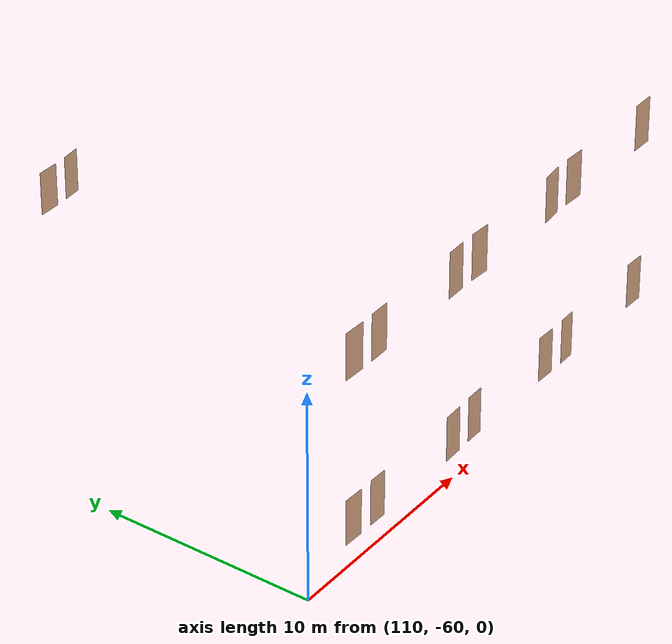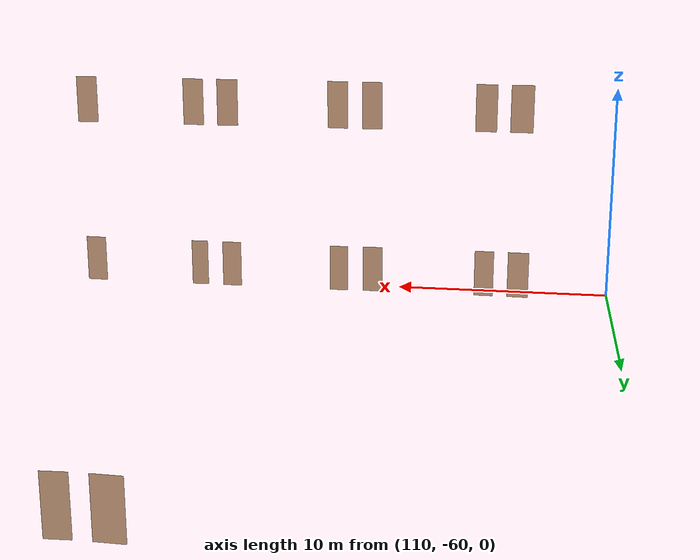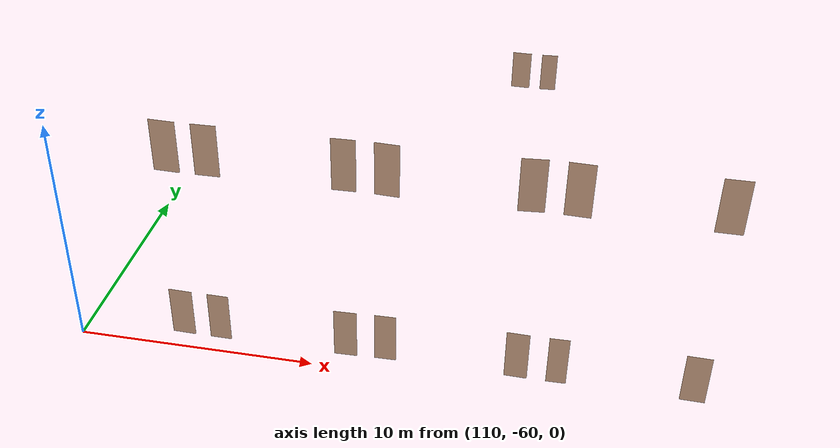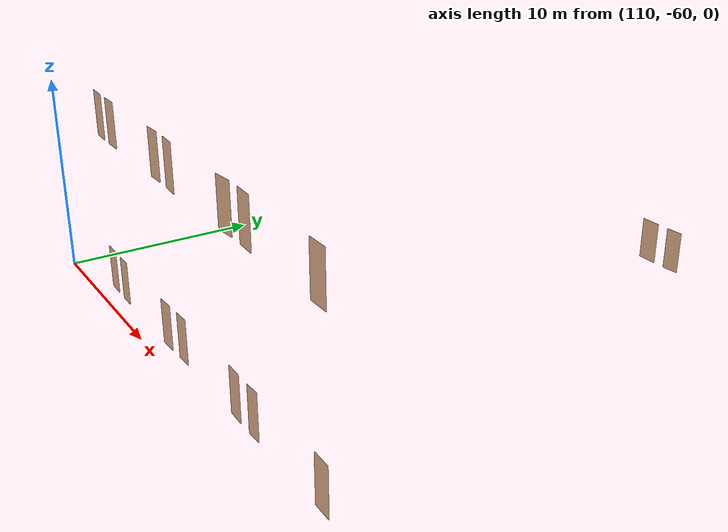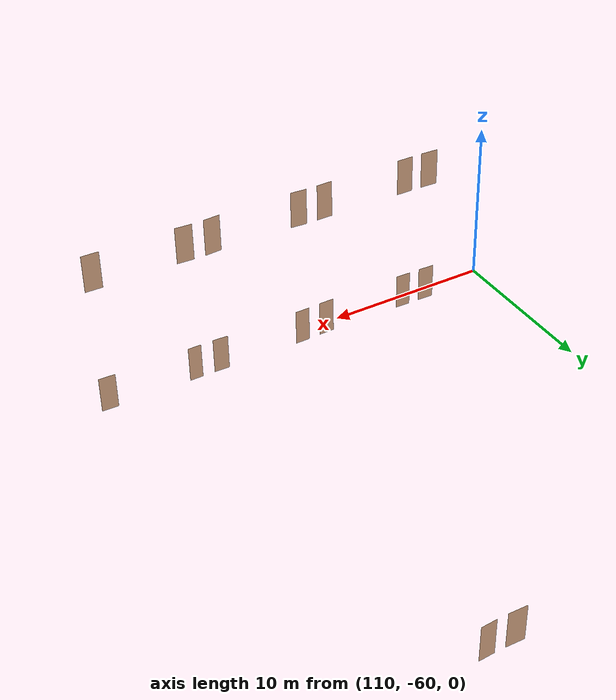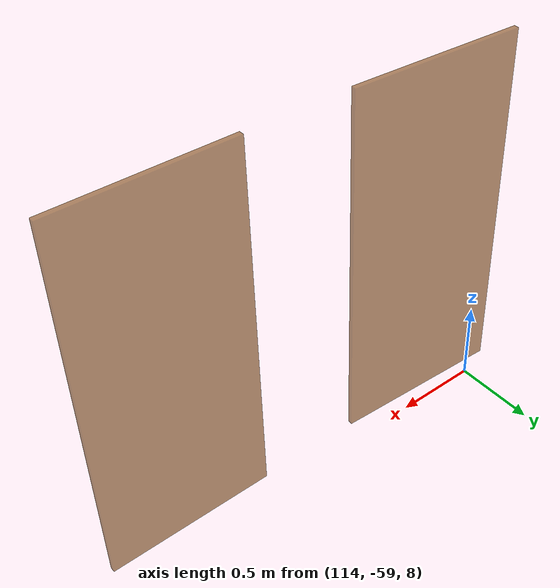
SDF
<sdf version="1.7">
 <world name="sim_world">
  <model name="puerta28">
   <pose>126.01508757610048 -33.778688903941855 0.0 0 0 -0.02857833146900446</pose>
   <link name="right">
    <pose>0 0 1.11 0 0 0</pose>
    <visual name="right_visual">
     <geometry><box><size>1.0545589963781905 0.03 2.2</size></box></geometry>
     <material>
      <ambient>0.5 0.25 0 0.6</ambient>
      <diffuse>0.5 0.25 0 0.6</diffuse>
      <pbr><metal><metalness>0.0</metalness></metal></pbr>
     </material>
    </visual>
    <collision name="right_collision">
     <geometry><box><size>1.0545589963781905 0.03 2.2</size></box></geometry>
     <surface><contact><collide_bitmask>0x02</collide_bitmask></contact></surface>
    </collision>
    <inertial>
     <mass>50.0</mass>
     <inertia><ixx>20.17041666666667</ixx><iyy>24.800394486842407</iyy><izz>4.637477820175735</izz></inertia>
    </inertial>
   </link>
   <joint name="right_joint" type="revolute">
    <parent>world</parent>
    <child>right</child>
    <axis><xyz>0 0 1</xyz><limit><lower>0</lower><upper>1.57</upper></limit></axis>
    <pose>0.5322794981890953 0 0 0 0 0</pose>
   </joint>
   <plugin name="register_component" filename="libregister_component.so">
    <component name="Door">
     <v_max_door>0.5</v_max_door>
     <a_max_door>0.3</a_max_door>
     <a_nom_door>0.15</a_nom_door>
     <dx_min_door>0.01</dx_min_door>
     <f_max_door>500.0</f_max_door>
     <ros_interface>true</ros_interface>
     <door name="puerta28" type="SwingDoor" left_joint_name="empty_joint" right_joint_name="right_joint"/>
    </component>
   </plugin>
  </model>
  <model name="puerta29">
   <pose>127.61893141590122 -33.771094627628 0.0 0 0 -3.0907873635063536</pose>
   <link name="right">
    <pose>0 0 1.11 0 0 0</pose>
    <visual name="right_visual">
     <geometry><box><size>0.8880828088218515 0.03 2.2</size></box></geometry>
     <material>
      <ambient>0.5 0.25 0 0.6</ambient>
      <diffuse>0.5 0.25 0 0.6</diffuse>
      <pbr><metal><metalness>0.0</metalness></metal></pbr>
     </material>
    </visual>
    <collision name="right_collision">
     <geometry><box><size>0.8880828088218515 0.03 2.2</size></box></geometry>
     <surface><contact><collide_bitmask>0x02</collide_bitmask></contact></surface>
    </collision>
    <inertial>
     <mass>50.0</mass>
     <inertia><ixx>20.17041666666667</ixx><iyy>23.45287948052046</iyy><izz>3.2899628138537893</izz></inertia>
    </inertial>
   </link>
   <joint name="right_joint" type="revolute">
    <parent>world</parent>
    <child>right</child>
    <axis><xyz>0 0 -1</xyz><limit><lower>0</lower><upper>1.57</upper></limit></axis>
    <pose>0.44904140441092577 0 0 0 0 0</pose>
   </joint>
   <plugin name="register_component" filename="libregister_component.so">
    <component name="Door">
     <v_max_door>0.5</v_max_door>
     <a_max_door>0.3</a_max_door>
     <a_nom_door>0.15</a_nom_door>
     <dx_min_door>0.01</dx_min_door>
     <f_max_door>500.0</f_max_door>
     <ros_interface>true</ros_interface>
     <door name="puerta29" type="SwingDoor" left_joint_name="empty_joint" right_joint_name="right_joint"/>
    </component>
   </plugin>
  </model>
  <model name="puerta132">
   <pose>114.23726959470542 -59.14283550502988 0.0 0 0 -0.027418216184547248</pose>
   <link name="right">
    <pose>0 0 1.11 0 0 0</pose>
    <visual name="right_visual">
     <geometry><box><size>0.9844876938478686 0.03 2.2</size></box></geometry>
     <material>
      <ambient>0.5 0.25 0 0.6</ambient>
      <diffuse>0.5 0.25 0 0.6</diffuse>
      <pbr><metal><metalness>0.0</metalness></metal></pbr>
     </material>
    </visual>
    <collision name="right_collision">
     <geometry><box><size>0.9844876938478686 0.03 2.2</size></box></geometry>
     <surface><contact><collide_bitmask>0x02</collide_bitmask></contact></surface>
    </collision>
    <inertial>
     <mass>50.0</mass>
     <inertia><ixx>20.17041666666667</ixx><iyy>24.205066747241233</iyy><izz>4.042150080574562</izz></inertia>
    </inertial>
   </link>
   <joint name="right_joint" type="revolute">
    <parent>world</parent>
    <child>right</child>
    <axis><xyz>0 0 -1</xyz><limit><lower>0</lower><upper>1.57</upper></limit></axis>
    <pose>0.4972438469239343 0 0 0 0 0</pose>
   </joint>
   <plugin name="register_component" filename="libregister_component.so">
    <component name="Door">
     <v_max_door>0.5</v_max_door>
     <a_max_door>0.3</a_max_door>
     <a_nom_door>0.15</a_nom_door>
     <dx_min_door>0.01</dx_min_door>
     <f_max_door>500.0</f_max_door>
     <ros_interface>true</ros_interface>
     <door name="puerta132" type="SwingDoor" left_joint_name="empty_joint" right_joint_name="right_joint"/>
    </component>
   </plugin>
  </model>
  <model name="puerta135">
   <pose>115.85781663504133 -59.16326221500425 0.0 0 0 3.1266993529322344</pose>
   <link name="right">
    <pose>0 0 1.11 0 0 0</pose>
    <visual name="right_visual">
     <geometry><box><size>0.9025082700834627 0.03 2.2</size></box></geometry>
     <material>
      <ambient>0.5 0.25 0 0.6</ambient>
      <diffuse>0.5 0.25 0 0.6</diffuse>
      <pbr><metal><metalness>0.0</metalness></metal></pbr>
     </material>
    </visual>
    <collision name="right_collision">
     <geometry><box><size>0.9025082700834627 0.03 2.2</size></box></geometry>
     <surface><contact><collide_bitmask>0x02</collide_bitmask></contact></surface>
    </collision>
    <inertial>
     <mass>50.0</mass>
     <inertia><ixx>20.17041666666667</ixx><iyy>23.560504906537687</iyy><izz>3.397588239871019</izz></inertia>
    </inertial>
   </link>
   <joint name="right_joint" type="revolute">
    <parent>world</parent>
    <child>right</child>
    <axis><xyz>0 0 1</xyz><limit><lower>0</lower><upper>1.57</upper></limit></axis>
    <pose>0.45625413504173135 0 0 0 0 0</pose>
   </joint>
   <plugin name="register_component" filename="libregister_component.so">
    <component name="Door">
     <v_max_door>0.5</v_max_door>
     <a_max_door>0.3</a_max_door>
     <a_nom_door>0.15</a_nom_door>
     <dx_min_door>0.01</dx_min_door>
     <f_max_door>500.0</f_max_door>
     <ros_interface>true</ros_interface>
     <door name="puerta135" type="SwingDoor" left_joint_name="empty_joint" right_joint_name="right_joint"/>
    </component>
   </plugin>
  </model>
  <model name="puerta136">
   <pose>121.22880018848949 -59.15711947626839 0.0 0 0 0.027215304292691322</pose>
   <link name="right">
    <pose>0 0 1.11 0 0 0</pose>
    <visual name="right_visual">
     <geometry><box><size>0.940877831977068 0.03 2.2</size></box></geometry>
     <material>
      <ambient>0.5 0.25 0 0.6</ambient>
      <diffuse>0.5 0.25 0 0.6</diffuse>
      <pbr><metal><metalness>0.0</metalness></metal></pbr>
     </material>
    </visual>
    <collision name="right_collision">
     <geometry><box><size>0.940877831977068 0.03 2.2</size></box></geometry>
     <surface><contact><collide_bitmask>0x02</collide_bitmask></contact></surface>
    </collision>
    <inertial>
     <mass>50.0</mass>
     <inertia><ixx>20.17041666666667</ixx><iyy>23.855212894607785</iyy><izz>3.692296227941116</izz></inertia>
    </inertial>
   </link>
   <joint name="right_joint" type="revolute">
    <parent>world</parent>
    <child>right</child>
    <axis><xyz>0 0 -1</xyz><limit><lower>0</lower><upper>1.57</upper></limit></axis>
    <pose>0.475438915988534 0 0 0 0 0</pose>
   </joint>
   <plugin name="register_component" filename="libregister_component.so">
    <component name="Door">
     <v_max_door>0.5</v_max_door>
     <a_max_door>0.3</a_max_door>
     <a_nom_door>0.15</a_nom_door>
     <dx_min_door>0.01</dx_min_door>
     <f_max_door>500.0</f_max_door>
     <ros_interface>true</ros_interface>
     <door name="puerta136" type="SwingDoor" left_joint_name="empty_joint" right_joint_name="right_joint"/>
    </component>
   </plugin>
  </model>
  <model name="puerta139">
   <pose>122.86968979169379 -59.09636526575757 0.0 0 0 -3.1235437301464053</pose>
   <link name="right">
    <pose>0 0 1.11 0 0 0</pose>
    <visual name="right_visual">
     <geometry><box><size>0.8781911491237782 0.03 2.2</size></box></geometry>
     <material>
      <ambient>0.5 0.25 0 0.6</ambient>
      <diffuse>0.5 0.25 0 0.6</diffuse>
      <pbr><metal><metalness>0.0</metalness></metal></pbr>
     </material>
    </visual>
    <collision name="right_collision">
     <geometry><box><size>0.8781911491237782 0.03 2.2</size></box></geometry>
     <surface><contact><collide_bitmask>0x02</collide_bitmask></contact></surface>
    </collision>
    <inertial>
     <mass>50.0</mass>
     <inertia><ixx>20.17041666666667</ixx><iyy>23.380082059997264</iyy><izz>3.217165393330592</izz></inertia>
    </inertial>
   </link>
   <joint name="right_joint" type="revolute">
    <parent>world</parent>
    <child>right</child>
    <axis><xyz>0 0 1</xyz><limit><lower>0</lower><upper>1.57</upper></limit></axis>
    <pose>0.4440955745618891 0 0 0 0 0</pose>
   </joint>
   <plugin name="register_component" filename="libregister_component.so">
    <component name="Door">
     <v_max_door>0.5</v_max_door>
     <a_max_door>0.3</a_max_door>
     <a_nom_door>0.15</a_nom_door>
     <dx_min_door>0.01</dx_min_door>
     <f_max_door>500.0</f_max_door>
     <ros_interface>true</ros_interface>
     <door name="puerta139" type="SwingDoor" left_joint_name="empty_joint" right_joint_name="right_joint"/>
    </component>
   </plugin>
  </model>
  <model name="puerta140">
   <pose>128.2026178164667 -59.10198208508112 0.0 0 0 -0.029432661171258447</pose>
   <link name="right">
    <pose>0 0 1.11 0 0 0</pose>
    <visual name="right_visual">
     <geometry><box><size>0.9164401512417065 0.03 2.2</size></box></geometry>
     <material>
      <ambient>0.5 0.25 0 0.6</ambient>
      <diffuse>0.5 0.25 0 0.6</diffuse>
      <pbr><metal><metalness>0.0</metalness></metal></pbr>
     </material>
    </visual>
    <collision name="right_collision">
     <geometry><box><size>0.9164401512417065 0.03 2.2</size></box></geometry>
     <surface><contact><collide_bitmask>0x02</collide_bitmask></contact></surface>
    </collision>
    <inertial>
     <mass>50.0</mass>
     <inertia><ixx>20.17041666666667</ixx><iyy>23.66609396169968</iyy><izz>3.5031772950330082</izz></inertia>
    </inertial>
   </link>
   <joint name="right_joint" type="revolute">
    <parent>world</parent>
    <child>right</child>
    <axis><xyz>0 0 -1</xyz><limit><lower>0</lower><upper>1.57</upper></limit></axis>
    <pose>0.46322007562085327 0 0 0 0 0</pose>
   </joint>
   <plugin name="register_component" filename="libregister_component.so">
    <component name="Door">
     <v_max_door>0.5</v_max_door>
     <a_max_door>0.3</a_max_door>
     <a_nom_door>0.15</a_nom_door>
     <dx_min_door>0.01</dx_min_door>
     <f_max_door>500.0</f_max_door>
     <ros_interface>true</ros_interface>
     <door name="puerta140" type="SwingDoor" left_joint_name="empty_joint" right_joint_name="right_joint"/>
    </component>
   </plugin>
  </model>
  <model name="puerta143">
   <pose>129.8163699779955 -59.10879800066474 0.0 0 0 -3.1246282655689597</pose>
   <link name="right">
    <pose>0 0 1.11 0 0 0</pose>
    <visual name="right_visual">
     <geometry><box><size>0.7935942719706183 0.03 2.2</size></box></geometry>
     <material>
      <ambient>0.5 0.25 0 0.6</ambient>
      <diffuse>0.5 0.25 0 0.6</diffuse>
      <pbr><metal><metalness>0.0</metalness></metal></pbr>
     </material>
    </visual>
    <collision name="right_collision">
     <geometry><box><size>0.7935942719706183 0.03 2.2</size></box></geometry>
     <surface><contact><collide_bitmask>0x02</collide_bitmask></contact></surface>
    </collision>
    <inertial>
     <mass>50.0</mass>
     <inertia><ixx>20.17041666666667</ixx><iyy>22.790799452102405</iyy><izz>2.6278827854357325</izz></inertia>
    </inertial>
   </link>
   <joint name="right_joint" type="revolute">
    <parent>world</parent>
    <child>right</child>
    <axis><xyz>0 0 1</xyz><limit><lower>0</lower><upper>1.57</upper></limit></axis>
    <pose>0.40179713598530914 0 0 0 0 0</pose>
   </joint>
   <plugin name="register_component" filename="libregister_component.so">
    <component name="Door">
     <v_max_door>0.5</v_max_door>
     <a_max_door>0.3</a_max_door>
     <a_nom_door>0.15</a_nom_door>
     <dx_min_door>0.01</dx_min_door>
     <f_max_door>500.0</f_max_door>
     <ros_interface>true</ros_interface>
     <door name="puerta143" type="SwingDoor" left_joint_name="empty_joint" right_joint_name="right_joint"/>
    </component>
   </plugin>
  </model>
  <model name="puerta144">
   <pose>135.1206038396324 -59.115592879471876 0.0 0 0 -0.027756343919965544</pose>
   <link name="right">
    <pose>0 0 1.11 0 0 0</pose>
    <visual name="right_visual">
     <geometry><box><size>0.970859888916426 0.03 2.2</size></box></geometry>
     <material>
      <ambient>0.5 0.25 0 0.6</ambient>
      <diffuse>0.5 0.25 0 0.6</diffuse>
      <pbr><metal><metalness>0.0</metalness></metal></pbr>
     </material>
    </visual>
    <collision name="right_collision">
     <geometry><box><size>0.970859888916426 0.03 2.2</size></box></geometry>
     <surface><contact><collide_bitmask>0x02</collide_bitmask></contact></surface>
    </collision>
    <inertial>
     <mass>50.0</mass>
     <inertia><ixx>20.17041666666667</ixx><iyy>24.094037182945065</iyy><izz>3.931120516278397</izz></inertia>
    </inertial>
   </link>
   <joint name="right_joint" type="revolute">
    <parent>world</parent>
    <child>right</child>
    <axis><xyz>0 0 -1</xyz><limit><lower>0</lower><upper>1.57</upper></limit></axis>
    <pose>0.49042994445821303 0 0 0 0 0</pose>
   </joint>
   <plugin name="register_component" filename="libregister_component.so">
    <component name="Door">
     <v_max_door>0.5</v_max_door>
     <a_max_door>0.3</a_max_door>
     <a_nom_door>0.15</a_nom_door>
     <dx_min_door>0.01</dx_min_door>
     <f_max_door>500.0</f_max_door>
     <ros_interface>true</ros_interface>
     <door name="puerta144" type="SwingDoor" left_joint_name="empty_joint" right_joint_name="right_joint"/>
    </component>
   </plugin>
  </model>
  <model name="puerta181">
   <pose>135.1849323779714 -59.11500205627081 8.0 0 0 -0.009556700180226833</pose>
   <link name="right">
    <pose>0 0 1.11 0 0 0</pose>
    <visual name="right_visual">
     <geometry><box><size>0.9937610373427257 0.03 2.2</size></box></geometry>
     <material>
      <ambient>0.5 0.25 0 0.6</ambient>
      <diffuse>0.5 0.25 0 0.6</diffuse>
      <pbr><metal><metalness>0.0</metalness></metal></pbr>
     </material>
    </visual>
    <collision name="right_collision">
     <geometry><box><size>0.9937610373427257 0.03 2.2</size></box></geometry>
     <surface><contact><collide_bitmask>0x02</collide_bitmask></contact></surface>
    </collision>
    <inertial>
     <mass>50.0</mass>
     <inertia><ixx>20.17041666666667</ixx><iyy>24.281504163918715</iyy><izz>4.118587497252043</izz></inertia>
    </inertial>
   </link>
   <joint name="right_joint" type="revolute">
    <parent>world</parent>
    <child>right</child>
    <axis><xyz>0 0 -1</xyz><limit><lower>0</lower><upper>1.57</upper></limit></axis>
    <pose>0.5018805186713629 0 0 0 0 0</pose>
   </joint>
   <plugin name="register_component" filename="libregister_component.so">
    <component name="Door">
     <v_max_door>0.5</v_max_door>
     <a_max_door>0.3</a_max_door>
     <a_nom_door>0.15</a_nom_door>
     <dx_min_door>0.01</dx_min_door>
     <f_max_door>500.0</f_max_door>
     <ros_interface>true</ros_interface>
     <door name="puerta181" type="SwingDoor" left_joint_name="empty_joint" right_joint_name="right_joint"/>
    </component>
   </plugin>
  </model>
  <model name="puerta182">
   <pose>129.91297356373187 -59.086964280320686 8.0 0 0 3.091966530315927</pose>
   <link name="right">
    <pose>0 0 1.11 0 0 0</pose>
    <visual name="right_visual">
     <geometry><box><size>0.9850233350056193 0.03 2.2</size></box></geometry>
     <material>
      <ambient>0.5 0.25 0 0.6</ambient>
      <diffuse>0.5 0.25 0 0.6</diffuse>
      <pbr><metal><metalness>0.0</metalness></metal></pbr>
     </material>
    </visual>
    <collision name="right_collision">
     <geometry><box><size>0.9850233350056193 0.03 2.2</size></box></geometry>
     <surface><contact><collide_bitmask>0x02</collide_bitmask></contact></surface>
    </collision>
    <inertial>
     <mass>50.0</mass>
     <inertia><ixx>20.17041666666667</ixx><iyy>24.20946237710664</iyy><izz>4.04654571043997</izz></inertia>
    </inertial>
   </link>
   <joint name="right_joint" type="revolute">
    <parent>world</parent>
    <child>right</child>
    <axis><xyz>0 0 1</xyz><limit><lower>0</lower><upper>1.57</upper></limit></axis>
    <pose>0.4975116675028097 0 0 0 0 0</pose>
   </joint>
   <plugin name="register_component" filename="libregister_component.so">
    <component name="Door">
     <v_max_door>0.5</v_max_door>
     <a_max_door>0.3</a_max_door>
     <a_nom_door>0.15</a_nom_door>
     <dx_min_door>0.01</dx_min_door>
     <f_max_door>500.0</f_max_door>
     <ros_interface>true</ros_interface>
     <door name="puerta182" type="SwingDoor" left_joint_name="empty_joint" right_joint_name="right_joint"/>
    </component>
   </plugin>
  </model>
  <model name="puerta185">
   <pose>128.24840067917918 -59.102419767441646 8.0 0 0 0.0809500580074144</pose>
   <link name="right">
    <pose>0 0 1.11 0 0 0</pose>
    <visual name="right_visual">
     <geometry><box><size>0.977056911471418 0.03 2.2</size></box></geometry>
     <material>
      <ambient>0.5 0.25 0 0.6</ambient>
      <diffuse>0.5 0.25 0 0.6</diffuse>
      <pbr><metal><metalness>0.0</metalness></metal></pbr>
     </material>
    </visual>
    <collision name="right_collision">
     <geometry><box><size>0.977056911471418 0.03 2.2</size></box></geometry>
     <surface><contact><collide_bitmask>0x02</collide_bitmask></contact></surface>
    </collision>
    <inertial>
     <mass>50.0</mass>
     <inertia><ixx>20.17041666666667</ixx><iyy>24.144334201058616</iyy><izz>3.981417534391944</izz></inertia>
    </inertial>
   </link>
   <joint name="right_joint" type="revolute">
    <parent>world</parent>
    <child>right</child>
    <axis><xyz>0 0 -1</xyz><limit><lower>0</lower><upper>1.57</upper></limit></axis>
    <pose>0.493528455735709 0 0 0 0 0</pose>
   </joint>
   <plugin name="register_component" filename="libregister_component.so">
    <component name="Door">
     <v_max_door>0.5</v_max_door>
     <a_max_door>0.3</a_max_door>
     <a_nom_door>0.15</a_nom_door>
     <dx_min_door>0.01</dx_min_door>
     <f_max_door>500.0</f_max_door>
     <ros_interface>true</ros_interface>
     <door name="puerta185" type="SwingDoor" left_joint_name="empty_joint" right_joint_name="right_joint"/>
    </component>
   </plugin>
  </model>
  <model name="puerta187">
   <pose>122.9317270705157 -59.114139050011325 8.0 0 0 3.0801571190050105</pose>
   <link name="right">
    <pose>0 0 1.11 0 0 0</pose>
    <visual name="right_visual">
     <geometry><box><size>0.955833063935824 0.03 2.2</size></box></geometry>
     <material>
      <ambient>0.5 0.25 0 0.6</ambient>
      <diffuse>0.5 0.25 0 0.6</diffuse>
      <pbr><metal><metalness>0.0</metalness></metal></pbr>
     </material>
    </visual>
    <collision name="right_collision">
     <geometry><box><size>0.955833063935824 0.03 2.2</size></box></geometry>
     <surface><contact><collide_bitmask>0x02</collide_bitmask></contact></surface>
    </collision>
    <inertial>
     <mass>50.0</mass>
     <inertia><ixx>20.17041666666667</ixx><iyy>23.97340352547061</iyy><izz>3.810486858803938</izz></inertia>
    </inertial>
   </link>
   <joint name="right_joint" type="revolute">
    <parent>world</parent>
    <child>right</child>
    <axis><xyz>0 0 1</xyz><limit><lower>0</lower><upper>1.57</upper></limit></axis>
    <pose>0.482916531967912 0 0 0 0 0</pose>
   </joint>
   <plugin name="register_component" filename="libregister_component.so">
    <component name="Door">
     <v_max_door>0.5</v_max_door>
     <a_max_door>0.3</a_max_door>
     <a_nom_door>0.15</a_nom_door>
     <dx_min_door>0.01</dx_min_door>
     <f_max_door>500.0</f_max_door>
     <ros_interface>true</ros_interface>
     <door name="puerta187" type="SwingDoor" left_joint_name="empty_joint" right_joint_name="right_joint"/>
    </component>
   </plugin>
  </model>
  <model name="puerta188">
   <pose>121.29198913504902 -59.094830328441454 8.0 0 0 0.0214146235311925</pose>
   <link name="right">
    <pose>0 0 1.11 0 0 0</pose>
    <visual name="right_visual">
     <geometry><box><size>0.9342981439606727 0.03 2.2</size></box></geometry>
     <material>
      <ambient>0.5 0.25 0 0.6</ambient>
      <diffuse>0.5 0.25 0 0.6</diffuse>
      <pbr><metal><metalness>0.0</metalness></metal></pbr>
     </material>
    </visual>
    <collision name="right_collision">
     <geometry><box><size>0.9342981439606727 0.03 2.2</size></box></geometry>
     <surface><contact><collide_bitmask>0x02</collide_bitmask></contact></surface>
    </collision>
    <inertial>
     <mass>50.0</mass>
     <inertia><ixx>20.17041666666667</ixx><iyy>23.80380425753483</iyy><izz>3.640887590868158</izz></inertia>
    </inertial>
   </link>
   <joint name="right_joint" type="revolute">
    <parent>world</parent>
    <child>right</child>
    <axis><xyz>0 0 -1</xyz><limit><lower>0</lower><upper>1.57</upper></limit></axis>
    <pose>0.47214907198033634 0 0 0 0 0</pose>
   </joint>
   <plugin name="register_component" filename="libregister_component.so">
    <component name="Door">
     <v_max_door>0.5</v_max_door>
     <a_max_door>0.3</a_max_door>
     <a_nom_door>0.15</a_nom_door>
     <dx_min_door>0.01</dx_min_door>
     <f_max_door>500.0</f_max_door>
     <ros_interface>true</ros_interface>
     <door name="puerta188" type="SwingDoor" left_joint_name="empty_joint" right_joint_name="right_joint"/>
    </component>
   </plugin>
  </model>
  <model name="puerta190">
   <pose>115.96040080217557 -59.111540790096925 8.0 0 0 -3.1312641115002333</pose>
   <link name="right">
    <pose>0 0 1.11 0 0 0</pose>
    <visual name="right_visual">
     <geometry><box><size>0.9838312853391674 0.03 2.2</size></box></geometry>
     <material>
      <ambient>0.5 0.25 0 0.6</ambient>
      <diffuse>0.5 0.25 0 0.6</diffuse>
      <pbr><metal><metalness>0.0</metalness></metal></pbr>
     </material>
    </visual>
    <collision name="right_collision">
     <geometry><box><size>0.9838312853391674 0.03 2.2</size></box></geometry>
     <surface><contact><collide_bitmask>0x02</collide_bitmask></contact></surface>
    </collision>
    <inertial>
     <mass>50.0</mass>
     <inertia><ixx>20.17041666666667</ixx><iyy>24.199683325050497</iyy><izz>4.036766658383827</izz></inertia>
    </inertial>
   </link>
   <joint name="right_joint" type="revolute">
    <parent>world</parent>
    <child>right</child>
    <axis><xyz>0 0 1</xyz><limit><lower>0</lower><upper>1.57</upper></limit></axis>
    <pose>0.4969156426695837 0 0 0 0 0</pose>
   </joint>
   <plugin name="register_component" filename="libregister_component.so">
    <component name="Door">
     <v_max_door>0.5</v_max_door>
     <a_max_door>0.3</a_max_door>
     <a_nom_door>0.15</a_nom_door>
     <dx_min_door>0.01</dx_min_door>
     <f_max_door>500.0</f_max_door>
     <ros_interface>true</ros_interface>
     <door name="puerta190" type="SwingDoor" left_joint_name="empty_joint" right_joint_name="right_joint"/>
    </component>
   </plugin>
  </model>
  <model name="puerta193">
   <pose>114.32066453037268 -59.097176151006124 8.0 0 0 -0.037392745367408164</pose>
   <link name="right">
    <pose>0 0 1.11 0 0 0</pose>
    <visual name="right_visual">
     <geometry><box><size>1.0441554112346663 0.03 2.2</size></box></geometry>
     <material>
      <ambient>0.5 0.25 0 0.6</ambient>
      <diffuse>0.5 0.25 0 0.6</diffuse>
      <pbr><metal><metalness>0.0</metalness></metal></pbr>
     </material>
    </visual>
    <collision name="right_collision">
     <geometry><box><size>1.0441554112346663 0.03 2.2</size></box></geometry>
     <surface><contact><collide_bitmask>0x02</collide_bitmask></contact></surface>
    </collision>
    <inertial>
     <mass>50.0</mass>
     <inertia><ixx>20.17041666666667</ixx><iyy>24.70941884504432</iyy><izz>4.546502178377645</izz></inertia>
    </inertial>
   </link>
   <joint name="right_joint" type="revolute">
    <parent>world</parent>
    <child>right</child>
    <axis><xyz>0 0 -1</xyz><limit><lower>0</lower><upper>1.57</upper></limit></axis>
    <pose>0.5270777056173331 0 0 0 0 0</pose>
   </joint>
   <plugin name="register_component" filename="libregister_component.so">
    <component name="Door">
     <v_max_door>0.5</v_max_door>
     <a_max_door>0.3</a_max_door>
     <a_nom_door>0.15</a_nom_door>
     <dx_min_door>0.01</dx_min_door>
     <f_max_door>500.0</f_max_door>
     <ros_interface>true</ros_interface>
     <door name="puerta193" type="SwingDoor" left_joint_name="empty_joint" right_joint_name="right_joint"/>
    </component>
   </plugin>
  </model>
 </world>
</sdf>
